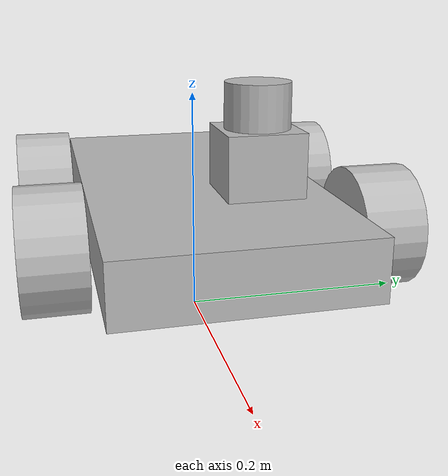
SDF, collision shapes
<?xml version='1.0'?>
<sdf version='1.4'>
  <model name="Pedro">
        <static>false</static>

        <link name='chassis'>
            <pose>0 0 .1 0 0 0</pose>

            <collision name='collision'>
              <geometry>
                <box>
                  <size>.4 .2 .05</size>
                </box>
              </geometry>
            </collision>

            <visual name='visual'>
              <geometry>
                <box>
                  <size>.4 .2 .05</size>
                </box>
              </geometry>
            </visual>
        </link>

      <link name="FL_wheel">
        <pose>0.1 0.13 0.1 0 1.5707 1.5707</pose>
        <collision name="collision">
          <geometry>
            <cylinder>
              <radius>.05</radius>
              <length>.05</length>
            </cylinder>
          </geometry>
        </collision>
        <visual name="visual">
          <geometry>
            <cylinder>
              <radius>.05</radius>
              <length>.05</length>
            </cylinder>
          </geometry>
        </visual>
      </link>

      <link name="FR_wheel">
        <pose>0.1 -0.13 0.1 0 1.5707 1.5707</pose>
        <collision name="collision">
          <geometry>
            <cylinder>
              <radius>.05</radius>
              <length>.05</length>
            </cylinder>
          </geometry>
        </collision>
        <visual name="visual">
          <geometry>
            <cylinder>
              <radius>.05</radius>
              <length>.05</length>
            </cylinder>
          </geometry>
        </visual>
      </link>

      <link name="BL_wheel">
        <pose>-0.1 0.13 0.1 0 1.5707 1.5707</pose>
        <collision name="collision">
          <geometry>
            <cylinder>
              <radius>.05</radius>
              <length>.05</length>
            </cylinder>
          </geometry>
        </collision>
        <visual name="visual">
          <geometry>
            <cylinder>
              <radius>.05</radius>
              <length>.05</length>
            </cylinder>
          </geometry>
        </visual>
      </link>

      <link name="BR_wheel">
        <pose>-0.1 -0.13 0.1 0 1.5707 1.5707</pose>
        <collision name="collision">
          <geometry>
            <cylinder>
              <radius>.05</radius>
              <length>.05</length>
            </cylinder>
          </geometry>
        </collision>
        <visual name="visual">
          <geometry>
            <cylinder>
              <radius>.05</radius>
              <length>.05</length>
            </cylinder>
          </geometry>
        </visual>
      </link>

      <joint type="revolute" name="FL_hinge">
        <pose>0 0 -0.03 0 0 0</pose>
        <child>FL_wheel</child>
        <parent>chassis</parent>
        <axis>
          <xyz>0 1 0</xyz>
        </axis>
      </joint>

      <joint type="revolute" name="FR_hinge">
        <pose>0 0 0.03 0 0 0</pose>
        <child>FR_wheel</child>
        <parent>chassis</parent>
        <axis>
          <xyz>0 1 0</xyz>
        </axis>
      </joint>

      <joint type="revolute" name="BL_hinge">
        <pose>0 0 -0.03 0 0 0</pose>
        <child>BL_wheel</child>
        <parent>chassis</parent>
        <axis>
          <xyz>0 1 0</xyz>
        </axis>
      </joint>

      <joint type="revolute" name="BR_hinge">
        <pose>0 0 0.03 0 0 0</pose>
        <child>BR_wheel</child>
        <parent>chassis</parent>
        <axis>
          <xyz>0 1 0</xyz>
        </axis>
      </joint>

    <include>
      <uri>model://hokuyo</uri>
      <pose>0.2 0 0.2 0 0 0</pose>
    </include>
    <joint name="hokuyo_joint" type="fixed">
      <child>hokuyo::link</child>
      <parent>chassis</parent>
    </joint>
  </model>
</sdf>

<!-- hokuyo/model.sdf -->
<sdf version="1.5">
  <model name="hokuyo">
    <pose>0 0 0.035 0 0 0</pose>
    <link name="link">
      <inertial>
        <mass>0.1</mass>
      </inertial>
      <visual name="visual">
        <geometry>
          <mesh>
            <uri>model://../model_source/models/hokuyo/meshes/hokuyo.dae</uri>
          </mesh>
        </geometry>
      </visual>
      <collision name="collision-base">
        <pose>0 0 -0.0145 0 0 0</pose>
        <geometry>
          <box>
            <size>0.05 0.05 0.041</size>
          </box>
        </geometry>
      </collision>
      <collision name="collision-top">
        <pose>0 0 0.0205 0 0 0</pose>
        <geometry>
          <cylinder>
            <radius>0.021</radius>
            <length>0.029</length>
          </cylinder>
        </geometry>
      </collision>
      <sensor name="laser" type="ray">
        <pose>0.01 0 0.0175 0 -0 0</pose>
        <ray>
          <scan>
            <horizontal>
              <samples>640</samples>
              <resolution>1</resolution>
              <min_angle>-2.26889</min_angle>
              <max_angle>2.268899</max_angle>
            </horizontal>
          </scan>
          <range>
            <min>0.08</min>
            <max>10</max>
            <resolution>0.01</resolution>
          </range>
        </ray>
        <plugin name="laser" filename="libRayPlugin.so" />
        <always_on>1</always_on>
        <update_rate>30</update_rate>
        <visualize>true</visualize>
      </sensor>
    </link>
  </model>
</sdf>
